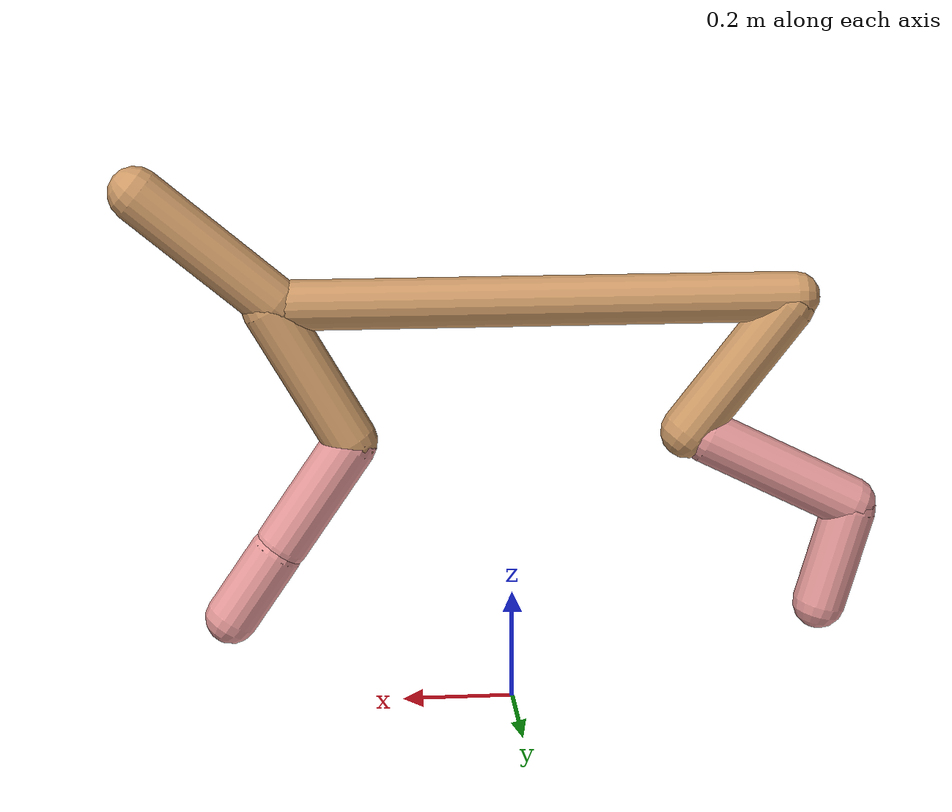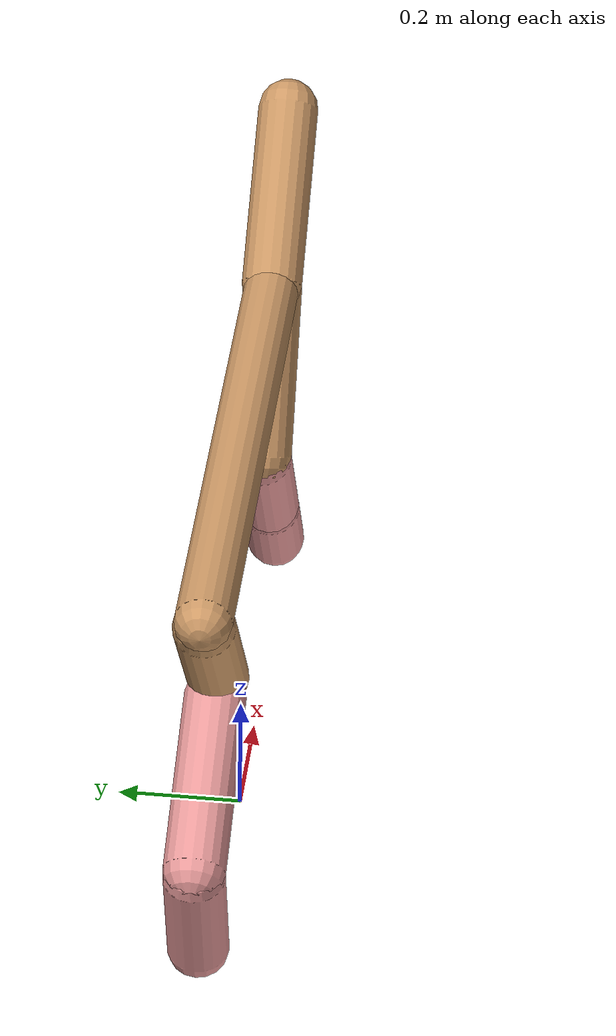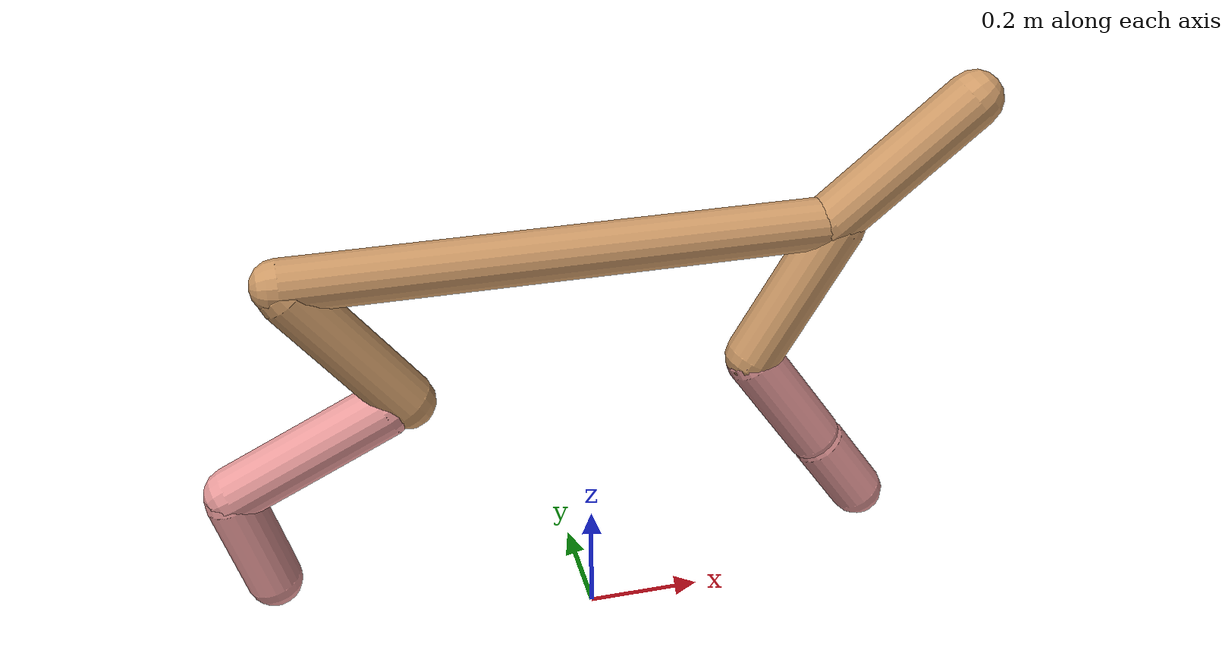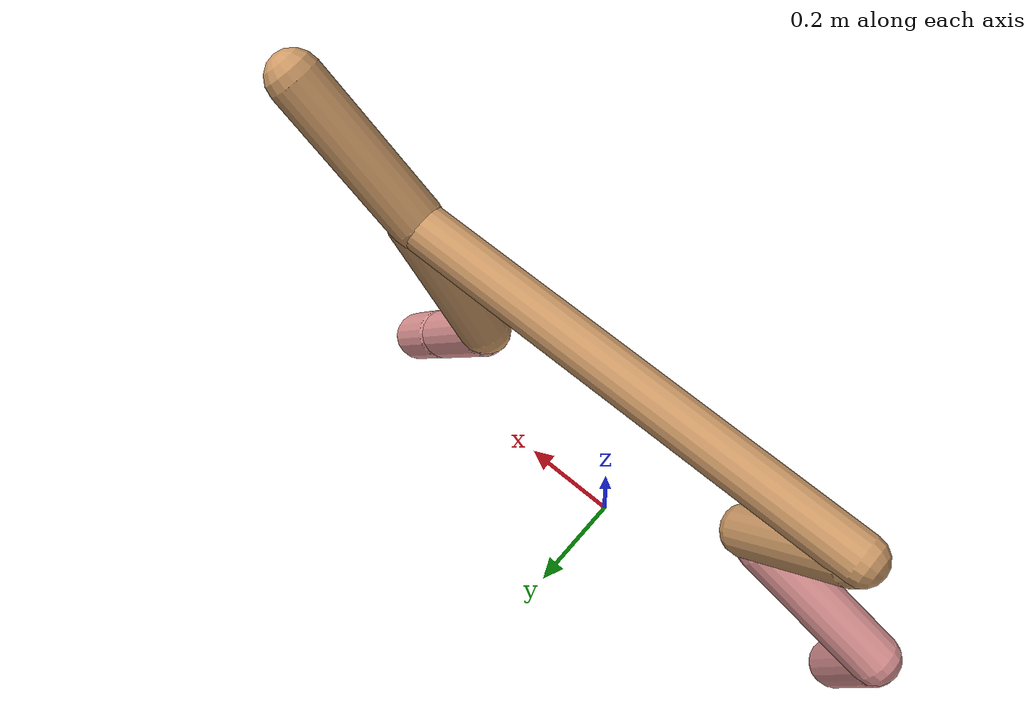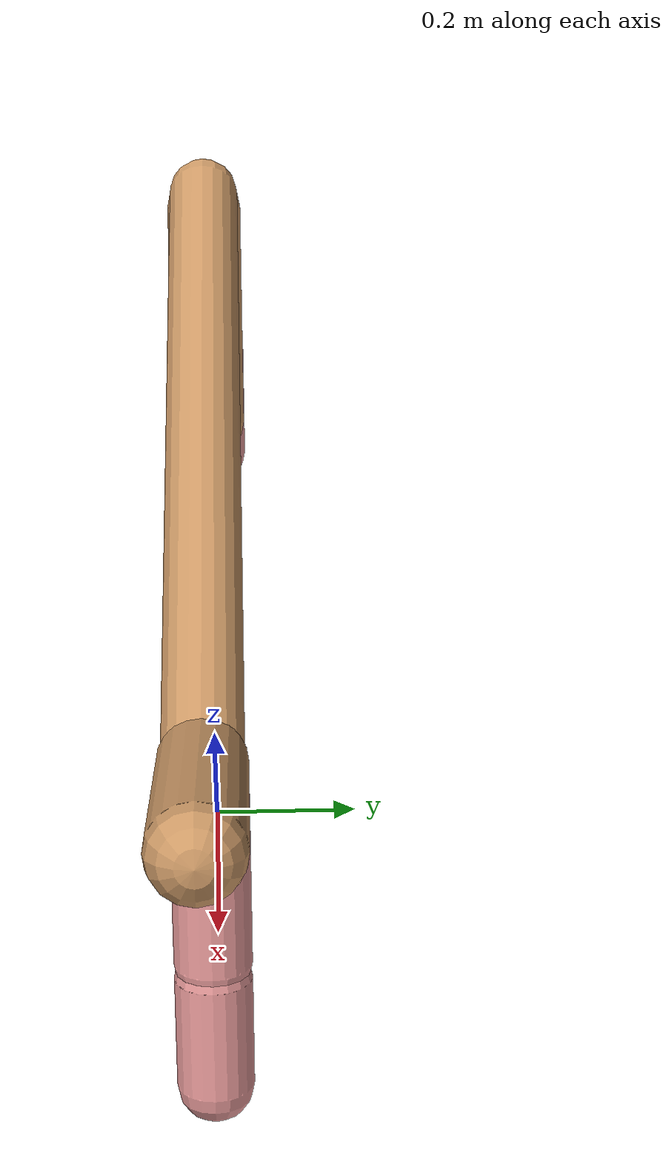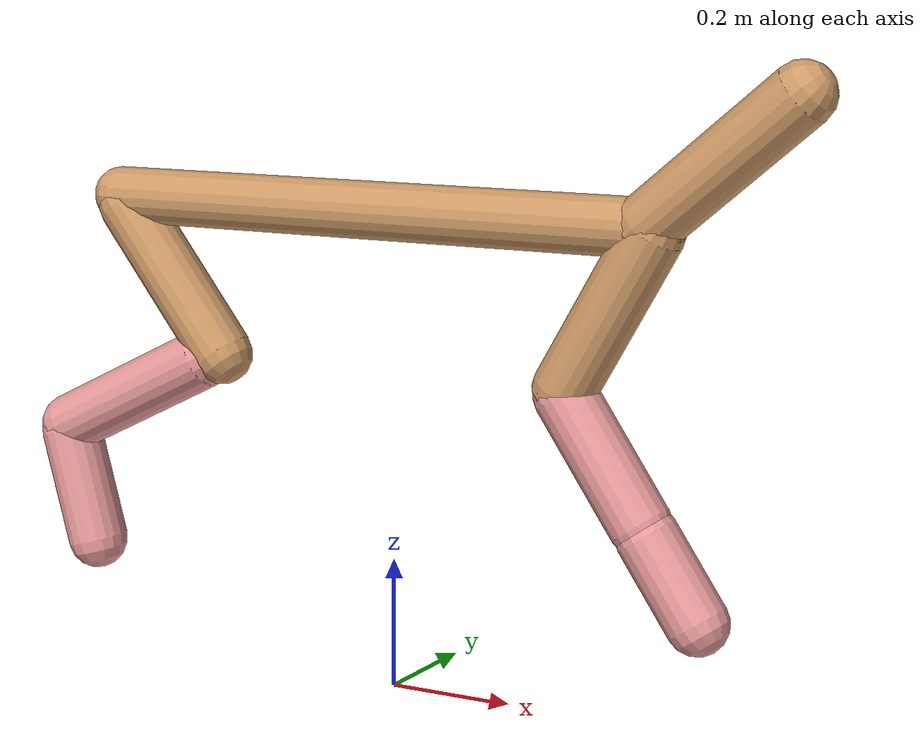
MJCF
<mujoco model="cheetah">
  <compiler angle="radian" coordinate="local" inertiafromgeom="true" settotalmass="14" />
  <default>
    <joint armature=".1" damping=".01" limited="true" solimplimit="0 .8 .03" solreflimit=".02 1" stiffness="8" />
    <geom conaffinity="0" condim="3" contype="1" friction="0.8 .1 .1" rgba="0.8 0.6 .4 1" solimp="0.0 0.8 0.01" solref="0.02 1" />
    <motor ctrllimited="true" ctrlrange="-1 1" />
  </default>
  <size nstack="300000" nuser_geom="1" />
  <option gravity="0 0 -9.81" timestep="0.01" />
  <worldbody>
    <body name="torso" pos="0.0 0.0 0.7367436843218996">
      <joint armature="0" axis="1 0 0" damping="0" limited="false" name="ignorex" pos="0 0 0" stiffness="0" type="slide" />
      <joint armature="0" axis="0 0 1" damping="0" limited="false" name="ignorez" pos="0 0 0" stiffness="0" type="slide" />
      <joint armature="0" axis="0 1 0" damping="0" limited="false" name="ignorey" pos="0 0 0" stiffness="0" type="hinge" />
      <geom fromto="-0.5 0.0 0.0 0.4279451084874556 0.0 0.0" name="torso" size="0.044462087709576936" type="capsule" />
      <geom axisangle="0 1 0 .87" name="head" pos="0.5279451084874556 0.0 0.1" size="0.04868652952747237 0.15" type="capsule" />

      <body name="bthigh" pos="-.5 0 0">
        <joint axis="0 1 0" damping="6" name="bthigh" pos="0 0 0" range="-.52 1.05" stiffness="240" type="hinge" />
        <geom axisangle="0 1 0 -3.8" name="bthigh" pos="0.09914789157600992 0.0 -0.12889225904881288" size="0.048168333599252246 0.1436024382728581" type="capsule" />
        <body name="bshin" pos="0.15829578315201984 0.0 -0.24778451809762578">
          <joint axis="0 1 0" damping="4.5" name="bshin" pos="0 0 0" range="-.785 .785" stiffness="180" type="hinge" />
          <geom axisangle="0 1 0 -2.03" name="bshin" pos="-0.13870687874842433 0.0 -0.06935343937421216" rgba="0.9 0.6 0.6 1" size="0.048168333599252246 0.14855424648916357" type="capsule" />
          <body name="bfoot" pos="-0.27741375749684866 0.0 -0.13870687874842433">
            <joint axis="0 1 0" damping="3" name="bfoot" pos="0 0 0" range="-.4 .785" stiffness="120" type="hinge" />
            <geom axisangle="0 1 0 -.27" name="bfoot" pos="0.029732302796063453 0.0 -0.09613444570727184" rgba="0.9 0.6 0.6 1" size="0.048168333599252246 0.0930939944665425" type="capsule" />
            <inertial mass="10" />
          </body>
        </body>
      </body>
      <body name="fthigh" pos="0.4279451084874556 0.0 0.0">
        <joint axis="0 1 0" damping="4.5" name="fthigh" pos="0 0 0" range="-1.5 0.8" stiffness="180" type="hinge" />
        <geom axisangle="0 1 0 .52" name="fthigh" pos="-0.07257570330628409 0.0 -0.12441549138220127" size="0.04799122784235778 0.13811183055942747" type="capsule" />
        <body name="fshin" pos="-0.14515140661256817 0.0 -0.24883098276440255">
          <joint axis="0 1 0" damping="3" name="fshin" pos="0 0 0" range="-1.2 1.1" stiffness="120" type="hinge" />
          <geom axisangle="0 1 0 -.6" name="fshin" pos="0.06738534151558012 0.0 -0.09330278056003401" rgba="0.9 0.6 0.6 1" size="0.04799122784235778 0.11007409052104744" type="capsule" />
          <body name="ffoot" pos="0.13477068303116024 0.0 -0.18660556112006801">
            <joint axis="0 1 0" damping="1.5" name="ffoot" pos="0 0 0" range="-3.1 -0.3" stiffness="60" type="hinge" />
            <geom axisangle="0 1 0 -.6" name="ffoot" pos="0.04645487430553617 0.0 -0.07226313780861184" rgba="0.9 0.6 0.6 1" size="0.04799122784235778 0.07269043713654078" type="capsule" />
            <inertial mass="10" />
          </body>
        </body>
      </body>
    </body>
  </worldbody>
  <actuator>
    <motor gear="120" joint="bthigh" name="bthigh" />
    <motor gear="90" joint="bshin" name="bshin" />
    <motor gear="60" joint="bfoot" name="bfoot" />
    <motor gear="120" joint="fthigh" name="fthigh" />
    <motor gear="60" joint="fshin" name="fshin" />
    <motor gear="30" joint="ffoot" name="ffoot" />
  </actuator>
</mujoco>
